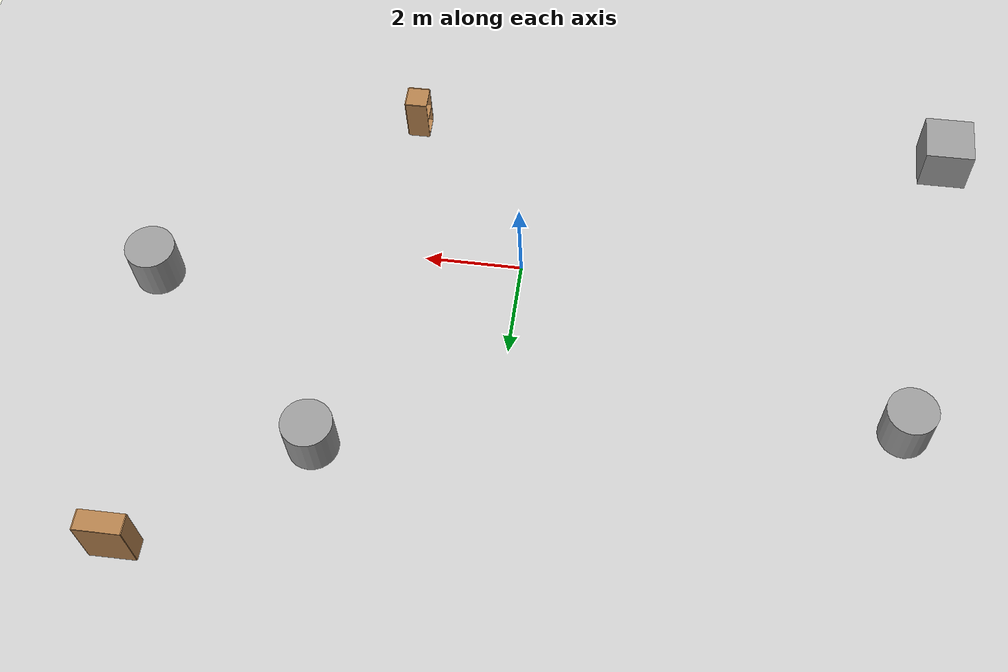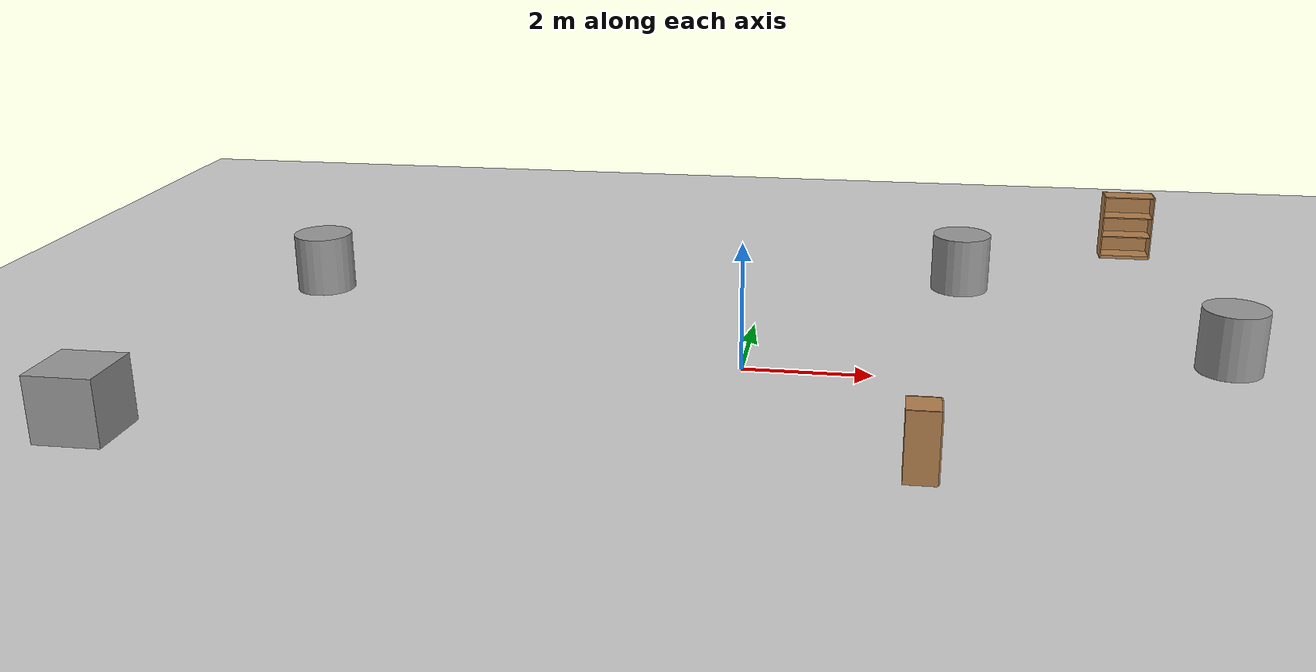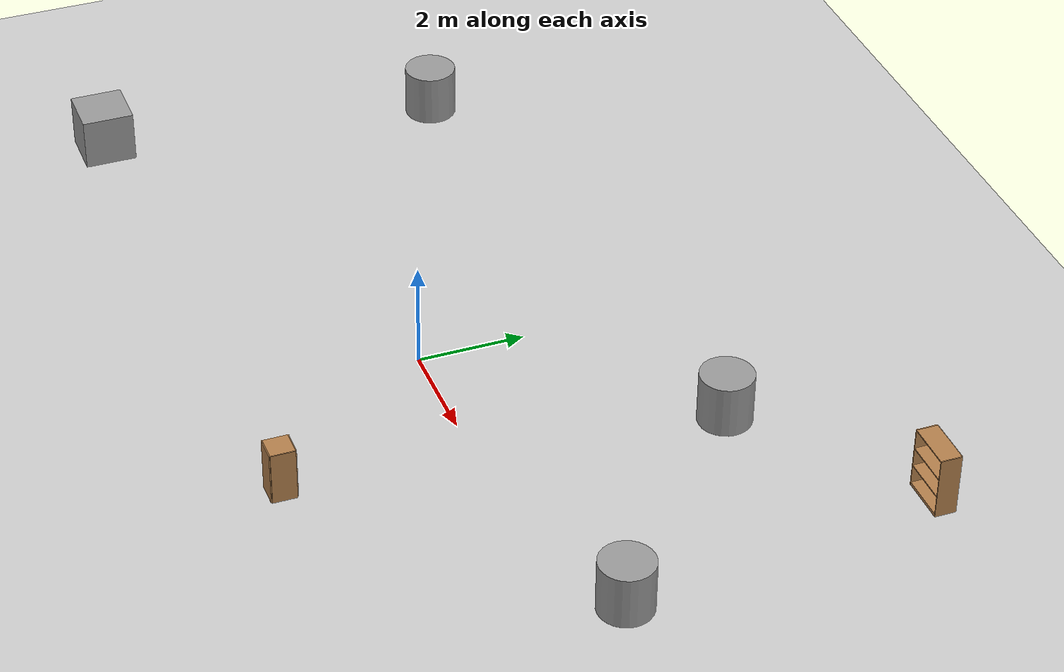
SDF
<sdf version="1.6">
 <world name="default">
  <light name="sun" type="directional">
   <pose>0 0 10 0 -0 0</pose>
   <diffuse>0.8 0.8 0.8 1</diffuse>
   <specular>0.2 0.2 0.2 1</specular>
   <attenuation>
    <range>1000</range>
    <constant>0.9</constant>
    <linear>0.01</linear>
    <quadratic>0.001</quadratic>
   </attenuation>
   <direction>-0.5 0.1 -0.9</direction>
  </light>
  <model name="ground_plane">
   <static>1</static>
   <link name="link">
    <collision name="collision">
     <geometry><plane><normal>0 0 1</normal><size>100 100</size></plane></geometry>
     <surface>
      <contact><collide_bitmask>65535</collide_bitmask></contact>
      <friction><ode><mu>100</mu><mu2>50</mu2></ode></friction>
     </surface>
    </collision>
    <visual name="visual">
     <cast_shadows>0</cast_shadows>
     <geometry><plane><normal>0 0 1</normal><size>100 100</size></plane></geometry>
     <material>
      <script><uri>file://media/materials/scripts/gazebo.material</uri><name>Gazebo/Grey</name></script>
     </material>
    </visual>
   </link>
  </model>
  <gravity>0 0 -9.8</gravity>
  <magnetic_field>6e-06 2.3e-05 -4.2e-05</magnetic_field>
  <atmosphere type="adiabatic"/>
  <physics name="default_physics" default="0" type="ode">
   <max_step_size>0.001</max_step_size>
   <real_time_factor>1</real_time_factor>
   <real_time_update_rate>1000</real_time_update_rate>
  </physics>
  <scene><ambient>0.4 0.4 0.4 1</ambient><background>0.7 0.7 0.7 1</background><shadows>1</shadows></scene>
  <audio><device>default</device></audio>
  <spherical_coordinates>
   <surface_model>EARTH_WGS84</surface_model>
   <latitude_deg>0</latitude_deg>
   <longitude_deg>0</longitude_deg>
   <elevation>0</elevation>
   <heading_deg>0</heading_deg>
  </spherical_coordinates>
  <model name="cabinet">
   <static>1</static>
   <link name="cabinet_bottom_plate">
    <inertial>
     <pose>0 0 -1 0 -0 0</pose>
     <inertia><ixx>2.05</ixx><ixy>0</ixy><ixz>0</ixz><iyy>2.05</iyy><iyz>0</iyz><izz>2.05</izz></inertia>
     <mass>25</mass>
    </inertial>
    <collision name="cabinet_bottom_plate_geom">
     <pose>0 0 0.01 0 -0 0</pose>
     <geometry><box><size>0.45 0.45 0.02</size></box></geometry>
    </collision>
    <visual name="cabinet_bottom_plate_geom_visual">
     <pose>0 0 0.01 0 -0 0</pose>
     <geometry><box><size>0.45 0.45 0.02</size></box></geometry>
     <material>
      <script><uri>file://media/materials/scripts/gazebo.material</uri><name>Gazebo/Wood</name></script>
     </material>
    </visual>
    <collision name="cabinet_bottom_plate_geom_cabinet_back_plate">
     <pose>0.235 0 0.51 0 -0 0</pose>
     <geometry><box><size>0.02 0.45 1.02</size></box></geometry>
    </collision>
    <visual name="cabinet_bottom_plate_geom_cabinet_back_plate_visual">
     <pose>0.235 0 0.51 0 -0 0</pose>
     <geometry><box><size>0.02 0.45 1.02</size></box></geometry>
     <material>
      <script><uri>file://media/materials/scripts/gazebo.material</uri><name>Gazebo/Wood</name></script>
     </material>
    </visual>
    <collision name="cabinet_bottom_plate_geom_cabinet_left_plate">
     <pose>0 0.235 0.51 0 -0 0</pose>
     <geometry><box><size>0.45 0.02 1.02</size></box></geometry>
    </collision>
    <visual name="cabinet_bottom_plate_geom_cabinet_left_plate_visual">
     <pose>0 0.235 0.51 0 -0 0</pose>
     <geometry><box><size>0.45 0.02 1.02</size></box></geometry>
     <material>
      <script><uri>file://media/materials/scripts/gazebo.material</uri><name>Gazebo/Wood</name></script>
     </material>
    </visual>
    <collision name="cabinet_bottom_plate_geom_cabinet_middle_plate">
     <pose>0 0 0.51 0 -0 0</pose>
     <geometry><box><size>0.45 0.45 0.02</size></box></geometry>
    </collision>
    <visual name="cabinet_bottom_plate_geom_cabinet_middle_plate_visual">
     <pose>0 0 0.51 0 -0 0</pose>
     <geometry><box><size>0.45 0.45 0.02</size></box></geometry>
     <material>
      <script><uri>file://media/materials/scripts/gazebo.material</uri><name>Gazebo/Wood</name></script>
     </material>
    </visual>
    <collision name="cabinet_bottom_plate_geom_cabinet_right_plate">
     <pose>0 -0.235 0.51 0 -0 0</pose>
     <geometry><box><size>0.45 0.02 1.02</size></box></geometry>
    </collision>
    <visual name="cabinet_bottom_plate_geom_cabinet_right_plate_visual">
     <pose>0 -0.235 0.51 0 -0 0</pose>
     <geometry><box><size>0.45 0.02 1.02</size></box></geometry>
     <material>
      <script><uri>file://media/materials/scripts/gazebo.material</uri><name>Gazebo/Wood</name></script>
     </material>
    </visual>
    <collision name="cabinet_bottom_plate_geom_cabinet_top_plate">
     <pose>0 0 1.01 0 -0 0</pose>
     <geometry><box><size>0.45 0.45 0.02</size></box></geometry>
    </collision>
    <visual name="cabinet_bottom_plate_geom_cabinet_top_plate_visual">
     <pose>0 0 1.01 0 -0 0</pose>
     <geometry><box><size>0.45 0.45 0.02</size></box></geometry>
     <material>
      <script><uri>file://media/materials/scripts/gazebo.material</uri><name>Gazebo/Wood</name></script>
     </material>
    </visual>
   </link>
   <pose>2.65962 -3.4089 0 0 -0 0</pose>
  </model>
  <model name="bookshelf">
   <static>1</static>
   <link name="link">
    <inertial><mass>1</mass></inertial>
    <collision name="back">
     <pose>0 0.005 0.6 0 -0 0</pose>
     <geometry><box><size>0.9 0.01 1.2</size></box></geometry>
    </collision>
    <visual name="visual1">
     <pose>0 0.005 0.6 0 -0 0</pose>
     <geometry><box><size>0.9 0.01 1.2</size></box></geometry>
     <material>
      <script><uri>file://media/materials/scripts/gazebo.material</uri><name>Gazebo/Wood</name></script>
     </material>
    </visual>
    <collision name="left_side">
     <pose>0.45 -0.195 0.6 0 -0 0</pose>
     <geometry><box><size>0.02 0.4 1.2</size></box></geometry>
    </collision>
    <visual name="visual2">
     <pose>0.45 -0.195 0.6 0 -0 0</pose>
     <geometry><box><size>0.02 0.4 1.2</size></box></geometry>
     <material>
      <script><uri>file://media/materials/scripts/gazebo.material</uri><name>Gazebo/Wood</name></script>
     </material>
    </visual>
    <collision name="right_side">
     <pose>-0.45 -0.195 0.6 0 -0 0</pose>
     <geometry><box><size>0.02 0.4 1.2</size></box></geometry>
    </collision>
    <visual name="visual3">
     <pose>-0.45 -0.195 0.6 0 -0 0</pose>
     <geometry><box><size>0.02 0.4 1.2</size></box></geometry>
     <material>
      <script><uri>file://media/materials/scripts/gazebo.material</uri><name>Gazebo/Wood</name></script>
     </material>
    </visual>
    <collision name="bottom">
     <pose>0 -0.195 0.03 0 -0 0</pose>
     <geometry><box><size>0.88 0.4 0.06</size></box></geometry>
    </collision>
    <visual name="visual4">
     <pose>0 -0.195 0.03 0 -0 0</pose>
     <geometry><box><size>0.88 0.4 0.06</size></box></geometry>
     <material>
      <script><uri>file://media/materials/scripts/gazebo.material</uri><name>Gazebo/Wood</name></script>
     </material>
    </visual>
    <collision name="top">
     <pose>0 -0.195 1.19 0 -0 0</pose>
     <geometry><box><size>0.88 0.4 0.02</size></box></geometry>
    </collision>
    <visual name="visual5">
     <pose>0 -0.195 1.19 0 -0 0</pose>
     <geometry><box><size>0.88 0.4 0.02</size></box></geometry>
     <material>
      <script><uri>file://media/materials/scripts/gazebo.material</uri><name>Gazebo/Wood</name></script>
     </material>
    </visual>
    <collision name="low_shelf">
     <pose>0 -0.195 0.43 0 -0 0</pose>
     <geometry><box><size>0.88 0.4 0.02</size></box></geometry>
    </collision>
    <visual name="visual6">
     <pose>0 -0.195 0.43 0 -0 0</pose>
     <geometry><box><size>0.88 0.4 0.02</size></box></geometry>
     <material>
      <script><uri>file://media/materials/scripts/gazebo.material</uri><name>Gazebo/Wood</name></script>
     </material>
    </visual>
    <collision name="high_shelf">
     <pose>0 -0.195 0.8 0 -0 0</pose>
     <geometry><box><size>0.88 0.4 0.02</size></box></geometry>
    </collision>
    <visual name="visual7">
     <pose>0 -0.195 0.8 0 -0 0</pose>
     <geometry><box><size>0.88 0.4 0.02</size></box></geometry>
     <material>
      <script><uri>file://media/materials/scripts/gazebo.material</uri><name>Gazebo/Wood</name></script>
     </material>
    </visual>
   </link>
   <pose>6.61017 7.14081 0 0 -0 0</pose>
  </model>
  <model name="unit_cylinder">
   <pose>-7.79085 2.94693 0.5 0 -0 0</pose>
   <link name="link">
    <inertial>
     <mass>1</mass>
     <inertia><ixx>0.145833</ixx><ixy>0</ixy><ixz>0</ixz><iyy>0.145833</iyy><iyz>0</iyz><izz>0.125</izz></inertia>
    </inertial>
    <collision name="collision">
     <geometry><cylinder><radius>0.5</radius><length>1</length></cylinder></geometry>
    </collision>
    <visual name="visual">
     <geometry><cylinder><radius>0.5</radius><length>1</length></cylinder></geometry>
     <material>
      <script><name>Gazebo/Grey</name><uri>file://media/materials/scripts/gazebo.material</uri></script>
     </material>
    </visual>
   </link>
  </model>
  <model name="unit_box">
   <pose>-8.63823 -3.6147 0.499995 0 1e-05 0</pose>
   <link name="link">
    <inertial>
     <mass>1</mass>
     <inertia>
      <ixx>0.166667</ixx>
      <ixy>0</ixy>
      <ixz>0</ixz>
      <iyy>0.166667</iyy>
      <iyz>0</iyz>
      <izz>0.166667</izz>
     </inertia>
    </inertial>
    <collision name="collision"><geometry><box><size>1 1 1</size></box></geometry></collision>
    <visual name="visual">
     <geometry><box><size>1 1 1</size></box></geometry>
     <material>
      <script><name>Gazebo/Grey</name><uri>file://media/materials/scripts/gazebo.material</uri></script>
     </material>
    </visual>
   </link>
  </model>
  <model name="unit_cylinder_0">
   <pose>3.42356 4.49615 0.5 0 -0 0</pose>
   <link name="link">
    <inertial>
     <mass>1</mass>
     <inertia><ixx>0.145833</ixx><ixy>0</ixy><ixz>0</ixz><iyy>0.145833</iyy><iyz>0</iyz><izz>0.125</izz></inertia>
    </inertial>
    <collision name="collision">
     <geometry><cylinder><radius>0.5</radius><length>1</length></cylinder></geometry>
    </collision>
    <visual name="visual">
     <geometry><cylinder><radius>0.5</radius><length>1</length></cylinder></geometry>
     <material>
      <script><name>Gazebo/Grey</name><uri>file://media/materials/scripts/gazebo.material</uri></script>
     </material>
    </visual>
   </link>
  </model>
  <light name="user_point_light_0" type="point">
   <pose>-0.953363 -0.400696 1 0 -0 0</pose>
   <diffuse>0.5 0.5 0.5 1</diffuse>
   <specular>0.1 0.1 0.1 1</specular>
   <attenuation>
    <range>20</range>
    <constant>0.5</constant>
    <linear>0.01</linear>
    <quadratic>0.001</quadratic>
   </attenuation>
   <cast_shadows>0</cast_shadows>
   <direction>0 0 -1</direction>
  </light>
  <light name="user_point_light_1" type="point">
   <pose>3.85612 5.988 1 0 -0 0</pose>
   <diffuse>0.5 0.5 0.5 1</diffuse>
   <specular>0.1 0.1 0.1 1</specular>
   <attenuation>
    <range>20</range>
    <constant>0.5</constant>
    <linear>0.01</linear>
    <quadratic>0.001</quadratic>
   </attenuation>
   <cast_shadows>0</cast_shadows>
   <direction>0 0 -1</direction>
  </light>
  <light name="user_point_light_2" type="point">
   <pose>-8.10228 -5.44887 1 0 -0 0</pose>
   <diffuse>0.5 0.5 0.5 1</diffuse>
   <specular>0.1 0.1 0.1 1</specular>
   <attenuation>
    <range>20</range>
    <constant>0.5</constant>
    <linear>0.01</linear>
    <quadratic>0.001</quadratic>
   </attenuation>
   <cast_shadows>0</cast_shadows>
   <direction>0 0 -1</direction>
  </light>
  <light name="user_point_light_3" type="point">
   <pose>-6.1445 5.37132 1 0 -0 0</pose>
   <diffuse>0.5 0.5 0.5 1</diffuse>
   <specular>0.1 0.1 0.1 1</specular>
   <attenuation>
    <range>20</range>
    <constant>0.5</constant>
    <linear>0.01</linear>
    <quadratic>0.001</quadratic>
   </attenuation>
   <cast_shadows>0</cast_shadows>
   <direction>0 0 -1</direction>
  </light>
  <light name="user_point_light_4" type="point">
   <pose>-8.08945 -0.52378 1 0 -0 0</pose>
   <diffuse>0.5 0.5 0.5 1</diffuse>
   <specular>0.1 0.1 0.1 1</specular>
   <attenuation>
    <range>20</range>
    <constant>0.5</constant>
    <linear>0.01</linear>
    <quadratic>0.001</quadratic>
   </attenuation>
   <cast_shadows>0</cast_shadows>
   <direction>0 0 -1</direction>
  </light>
  <light name="user_point_light_5" type="point">
   <pose>5.16092 -2.95363 1 0 -0 0</pose>
   <diffuse>0.5 0.5 0.5 1</diffuse>
   <specular>0.1 0.1 0.1 1</specular>
   <attenuation>
    <range>20</range>
    <constant>0.5</constant>
    <linear>0.01</linear>
    <quadratic>0.001</quadratic>
   </attenuation>
   <cast_shadows>0</cast_shadows>
   <direction>0 0 -1</direction>
  </light>
  <model name="unit_cylinder_1">
   <pose>7.3511 1.00129 0.5 0 -0 0</pose>
   <link name="link">
    <inertial>
     <mass>1</mass>
     <inertia><ixx>0.145833</ixx><ixy>0</ixy><ixz>0</ixz><iyy>0.145833</iyy><iyz>0</iyz><izz>0.125</izz></inertia>
    </inertial>
    <collision name="collision">
     <geometry><cylinder><radius>0.5</radius><length>1</length></cylinder></geometry>
    </collision>
    <visual name="visual">
     <geometry><cylinder><radius>0.5</radius><length>1</length></cylinder></geometry>
     <material>
      <script><name>Gazebo/Grey</name><uri>file://media/materials/scripts/gazebo.material</uri></script>
     </material>
    </visual>
   </link>
  </model>
  <light name="user_point_light_6" type="point">
   <pose>1.30064 0.94564 1 0 -0 0</pose>
   <diffuse>0.5 0.5 0.5 1</diffuse>
   <specular>0.1 0.1 0.1 1</specular>
   <attenuation>
    <range>20</range>
    <constant>0.5</constant>
    <linear>0.01</linear>
    <quadratic>0.001</quadratic>
   </attenuation>
   <cast_shadows>0</cast_shadows>
   <direction>0 0 -1</direction>
  </light>
 </world>
</sdf>
